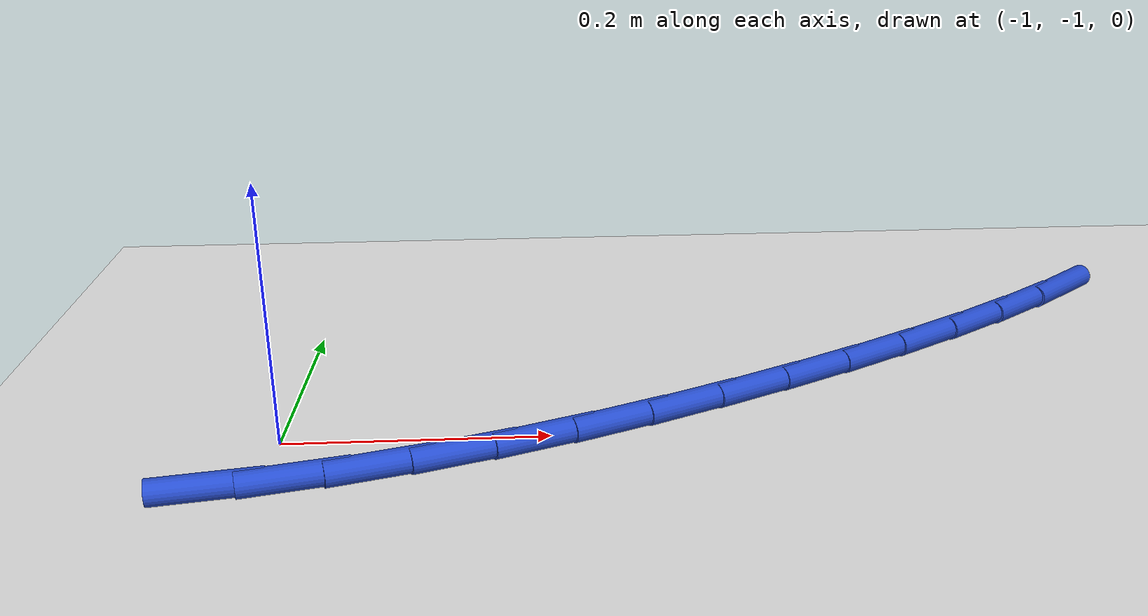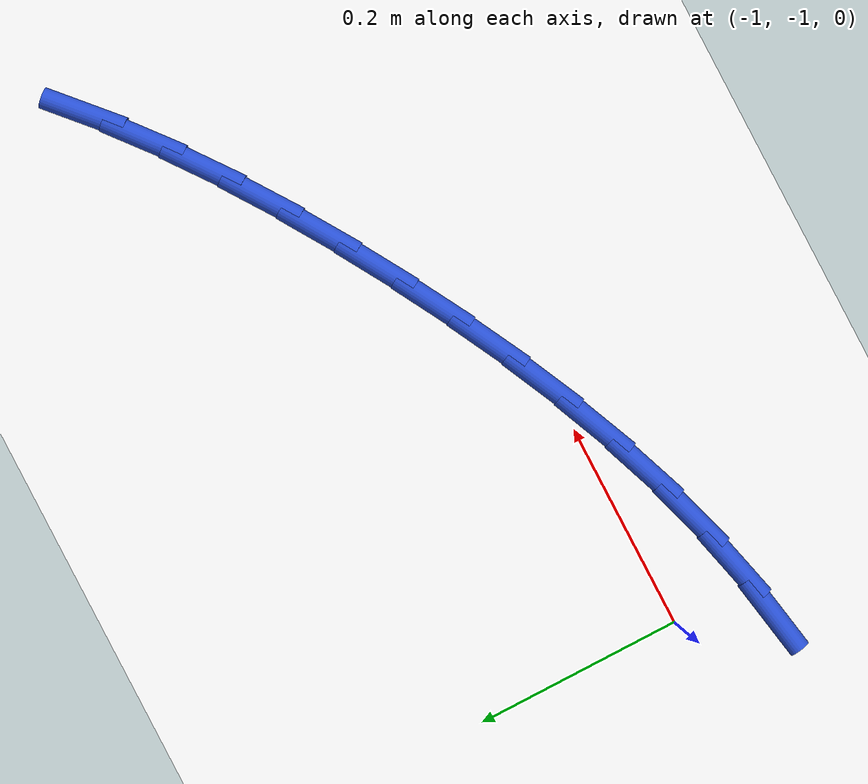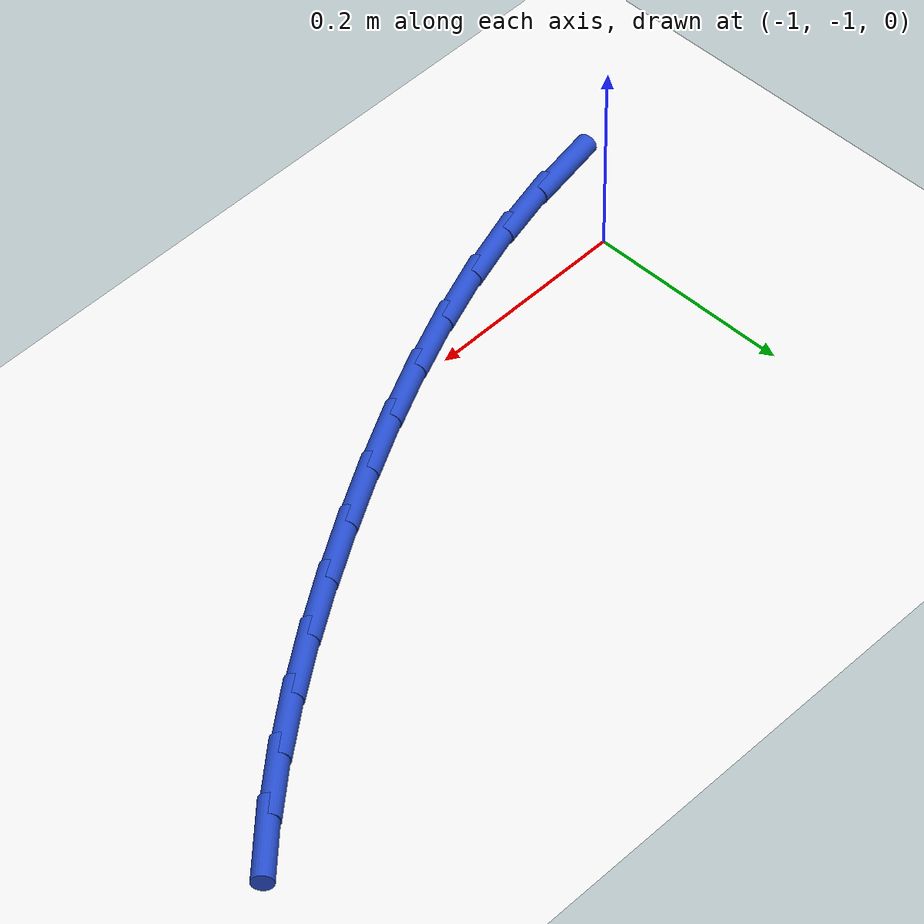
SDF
<sdf version="1.6">
 <world name="default">
  <model name="ground_plane">
   <static>1</static>
   <link name="link">
    <collision name="collision">
     <geometry><plane><normal>0 0 1</normal><size>100 100</size></plane></geometry>
     <surface><friction><ode><mu>100</mu><mu2>50</mu2></ode></friction></surface>
    </collision>
    <visual name="visual">
     <cast_shadows>0</cast_shadows>
     <geometry><plane><normal>0 0 1</normal><size>100 100</size></plane></geometry>
     <material>
      <script><uri>file://media/materials/scripts/gazebo.material</uri><name>Gazebo/WhiteGlow</name></script>
     </material>
    </visual>
   </link>
  </model>
  <model name="line">
   <link name="link_83">
    <pose>-1.0341098055923836 -1.0828188767259288 0.01 0 1.57 0.17497140602149114</pose>
    <collision name="collision">
     <geometry><cylinder><radius>0.01</radius><length>0.08</length></cylinder></geometry>
    </collision>
    <visual name="visual">
     <material>
      <script><name>Gazebo/Blue</name><uri>file://media/materials/scripts/gazebo.material</uri></script>
     </material>
     <geometry><cylinder><radius>0.01</radius><length>0.08</length></cylinder></geometry>
    </visual>
   </link>
   <link name="link_84">
    <pose>-0.9762170107718865 -1.0725846388581848 0.01 0 1.57 0.2440778390348062</pose>
    <collision name="collision">
     <geometry><cylinder><radius>0.01</radius><length>0.08</length></cylinder></geometry>
    </collision>
    <visual name="visual">
     <material>
      <script><name>Gazebo/Blue</name><uri>file://media/materials/scripts/gazebo.material</uri></script>
     </material>
     <geometry><cylinder><radius>0.01</radius><length>0.08</length></cylinder></geometry>
    </visual>
   </link>
   <link name="link_85">
    <pose>-0.9184677909381374 -1.0582025947261808 0.01 0 1.57 0.3052046570053002</pose>
    <collision name="collision">
     <geometry><cylinder><radius>0.01</radius><length>0.08</length></cylinder></geometry>
    </collision>
    <visual name="visual">
     <material>
      <script><name>Gazebo/Blue</name><uri>file://media/materials/scripts/gazebo.material</uri></script>
     </material>
     <geometry><cylinder><radius>0.01</radius><length>0.08</length></cylinder></geometry>
    </visual>
   </link>
   <link name="link_86">
    <pose>-0.8610032279502887 -1.0400984886088405 0.01 0 1.57 0.3589376553991584</pose>
    <collision name="collision">
     <geometry><cylinder><radius>0.01</radius><length>0.08</length></cylinder></geometry>
    </collision>
    <visual name="visual">
     <material>
      <script><name>Gazebo/Blue</name><uri>file://media/materials/scripts/gazebo.material</uri></script>
     </material>
     <geometry><cylinder><radius>0.01</radius><length>0.08</length></cylinder></geometry>
    </visual>
   </link>
   <link name="link_87">
    <pose>-0.8039644036674897 -1.018698064785086 0.01 0 1.57 0.405919241847284</pose>
    <collision name="collision">
     <geometry><cylinder><radius>0.01</radius><length>0.08</length></cylinder></geometry>
    </collision>
    <visual name="visual">
     <material>
      <script><name>Gazebo/Blue</name><uri>file://media/materials/scripts/gazebo.material</uri></script>
     </material>
     <geometry><cylinder><radius>0.01</radius><length>0.08</length></cylinder></geometry>
    </visual>
   </link>
   <link name="link_88">
    <pose>-0.7474923999488924 -0.99442706753384 0.01 0 1.57 0.44677724411289216</pose>
    <collision name="collision">
     <geometry><cylinder><radius>0.01</radius><length>0.08</length></cylinder></geometry>
    </collision>
    <visual name="visual">
     <material>
      <script><name>Gazebo/Blue</name><uri>file://media/materials/scripts/gazebo.material</uri></script>
     </material>
     <geometry><cylinder><radius>0.01</radius><length>0.08</length></cylinder></geometry>
    </visual>
   </link>
   <link name="link_89">
    <pose>-0.6917282986536458 -0.9677112411340248 0.01 0 1.57 0.4820823756703916</pose>
    <collision name="collision">
     <geometry><cylinder><radius>0.01</radius><length>0.08</length></cylinder></geometry>
    </collision>
    <visual name="visual">
     <material>
      <script><name>Gazebo/Blue</name><uri>file://media/materials/scripts/gazebo.material</uri></script>
     </material>
     <geometry><cylinder><radius>0.01</radius><length>0.08</length></cylinder></geometry>
    </visual>
   </link>
   <link name="link_90">
    <pose>-0.6368131816409024 -0.938976329864564 0.01 0 1.57 0.5123248553985996</pose>
    <collision name="collision">
     <geometry><cylinder><radius>0.01</radius><length>0.08</length></cylinder></geometry>
    </collision>
    <visual name="visual">
     <material>
      <script><name>Gazebo/Blue</name><uri>file://media/materials/scripts/gazebo.material</uri></script>
     </material>
     <geometry><cylinder><radius>0.01</radius><length>0.08</length></cylinder></geometry>
    </visual>
   </link>
   <link name="link_91">
    <pose>-0.5828881311874698 -0.9086480749444237 0.01 0 1.57 0.539483329340528</pose>
    <collision name="collision">
     <geometry><cylinder><radius>0.01</radius><length>0.08</length></cylinder></geometry>
    </collision>
    <visual name="visual">
     <material>
      <script><name>Gazebo/Blue</name><uri>file://media/materials/scripts/gazebo.material</uri></script>
     </material>
     <geometry><cylinder><radius>0.01</radius><length>0.08</length></cylinder></geometry>
    </visual>
   </link>
   <link name="link_92">
    <pose>-0.5301085263450532 -0.8770474729293346 0.01 0 1.57 0.5695853593187011</pose>
    <collision name="collision">
     <geometry><cylinder><radius>0.01</radius><length>0.08</length></cylinder></geometry>
    </collision>
    <visual name="visual">
     <material>
      <script><name>Gazebo/Blue</name><uri>file://media/materials/scripts/gazebo.material</uri></script>
     </material>
     <geometry><cylinder><radius>0.01</radius><length>0.08</length></cylinder></geometry>
    </visual>
   </link>
   <link name="link_93">
    <pose>-0.4786817391851304 -0.8441145959087056 0.01 0 1.57 0.6041439592081106</pose>
    <collision name="collision">
     <geometry><cylinder><radius>0.01</radius><length>0.08</length></cylinder></geometry>
    </collision>
    <visual name="visual">
     <material>
      <script><name>Gazebo/Blue</name><uri>file://media/materials/scripts/gazebo.material</uri></script>
     </material>
     <geometry><cylinder><radius>0.01</radius><length>0.08</length></cylinder></geometry>
    </visual>
   </link>
   <link name="link_94">
    <pose>-0.42882695751240146 -0.8097029485463467 0.01 0 1.57 0.6433575735351825</pose>
    <collision name="collision">
     <geometry><cylinder><radius>0.01</radius><length>0.08</length></cylinder></geometry>
    </collision>
    <visual name="visual">
     <material>
      <script><name>Gazebo/Blue</name><uri>file://media/materials/scripts/gazebo.material</uri></script>
     </material>
     <geometry><cylinder><radius>0.01</radius><length>0.08</length></cylinder></geometry>
    </visual>
   </link>
   <link name="link_95">
    <pose>-0.38076336913156406 -0.773666035506067 0.01 0 1.57 0.6874022101966772</pose>
    <collision name="collision">
     <geometry><cylinder><radius>0.01</radius><length>0.08</length></cylinder></geometry>
    </collision>
    <visual name="visual">
     <material>
      <script><name>Gazebo/Blue</name><uri>file://media/materials/scripts/gazebo.material</uri></script>
     </material>
     <geometry><cylinder><radius>0.01</radius><length>0.08</length></cylinder></geometry>
    </visual>
   </link>
   <link name="link_96">
    <pose>-0.33471016184731817 -0.7358573614516772 0.01 0 1.57 0.73640472554082</pose>
    <collision name="collision">
     <geometry><cylinder><radius>0.01</radius><length>0.08</length></cylinder></geometry>
    </collision>
    <visual name="visual">
     <material>
      <script><name>Gazebo/Blue</name><uri>file://media/materials/scripts/gazebo.material</uri></script>
     </material>
     <geometry><cylinder><radius>0.01</radius><length>0.08</length></cylinder></geometry>
    </visual>
   </link>
  </model>
 </world>
</sdf>
